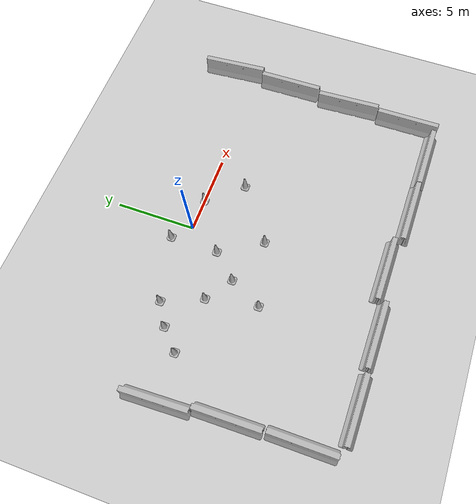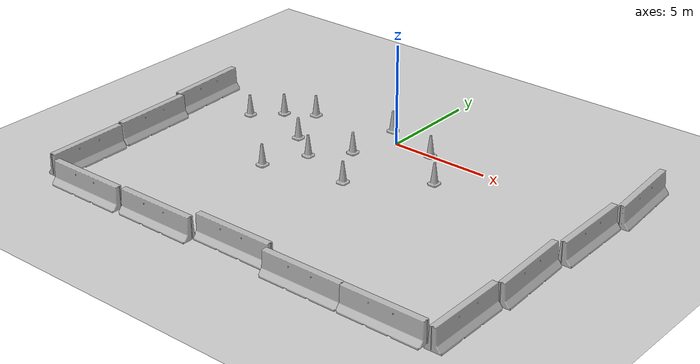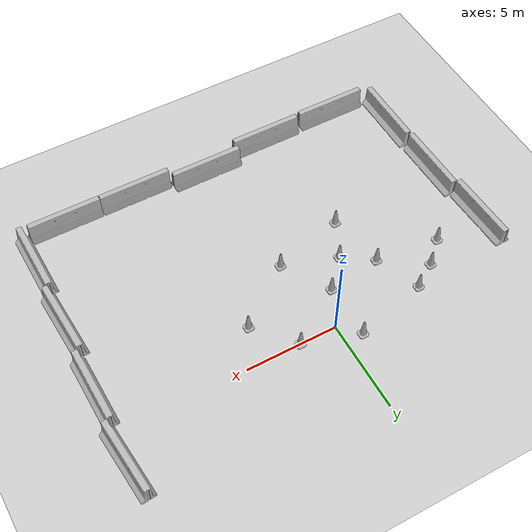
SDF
<sdf version="1.4">
 <world name="default">
  <model name="ground_plane">
   <static>1</static>
   <link name="link">
    <collision name="collision">
     <geometry><plane><normal>0 0 1</normal><size>100 100</size></plane></geometry>
     <surface><friction><ode><mu>100</mu><mu2>50</mu2></ode></friction></surface>
    </collision>
    <visual name="visual">
     <cast_shadows>0</cast_shadows>
     <geometry><plane><normal>0 0 1</normal><size>100 100</size></plane></geometry>
     <material>
      <script><uri>file://media/materials/scripts/gazebo.material</uri><name>Gazebo/Grey</name></script>
     </material>
    </visual>
    <velocity_decay><linear>0</linear><angular>0</angular></velocity_decay>
   </link>
  </model>
  <model name="jersey_barrier">
   <static>1</static>
   <link name="link">
    <visual name="visual">
     <geometry><mesh><uri>model://jersey_barrier/meshes/jersey_barrier.dae</uri></mesh></geometry>
    </visual>
    <collision name="upright">
     <pose>0 0 0.5715 0 -0 0</pose>
     <geometry><box><size>4.06542 0.3063 1.143</size></box></geometry>
    </collision>
    <collision name="base">
     <pose>0 0 0.032258 0 -0 0</pose>
     <geometry><box><size>4.06542 0.8107 0.064516</size></box></geometry>
    </collision>
    <collision name="base2">
     <pose>0 0 0.1 0 -0 0</pose>
     <geometry><box><size>4.06542 0.65 0.1</size></box></geometry>
    </collision>
    <collision name="base3">
     <pose>0 0 0.2 0 -0 0</pose>
     <geometry><box><size>4.06542 0.5 0.1</size></box></geometry>
    </collision>
    <collision name="left-angle">
     <pose>0 -0.224 0.2401 0.9 -0 0</pose>
     <geometry><box><size>4.06542 0.5 0.064516</size></box></geometry>
    </collision>
    <collision name="right-angle">
     <pose>0 0.224 0.2401 -0.9 0 0</pose>
     <geometry><box><size>4.06542 0.5 0.064516</size></box></geometry>
    </collision>
    <velocity_decay><linear>0</linear><angular>0</angular></velocity_decay>
   </link>
   <pose>-7.26215 -12.5985 0 0 -0 0</pose>
  </model>
  <model name="jersey_barrier_0">
   <static>1</static>
   <link name="link">
    <visual name="visual">
     <geometry><mesh><uri>model://jersey_barrier/meshes/jersey_barrier.dae</uri></mesh></geometry>
    </visual>
    <collision name="upright">
     <pose>0 0 0.5715 0 -0 0</pose>
     <geometry><box><size>4.06542 0.3063 1.143</size></box></geometry>
    </collision>
    <collision name="base">
     <pose>0 0 0.032258 0 -0 0</pose>
     <geometry><box><size>4.06542 0.8107 0.064516</size></box></geometry>
    </collision>
    <collision name="base2">
     <pose>0 0 0.1 0 -0 0</pose>
     <geometry><box><size>4.06542 0.65 0.1</size></box></geometry>
    </collision>
    <collision name="base3">
     <pose>0 0 0.2 0 -0 0</pose>
     <geometry><box><size>4.06542 0.5 0.1</size></box></geometry>
    </collision>
    <collision name="left-angle">
     <pose>0 -0.224 0.2401 0.9 -0 0</pose>
     <geometry><box><size>4.06542 0.5 0.064516</size></box></geometry>
    </collision>
    <collision name="right-angle">
     <pose>0 0.224 0.2401 -0.9 0 0</pose>
     <geometry><box><size>4.06542 0.5 0.064516</size></box></geometry>
    </collision>
    <velocity_decay><linear>0</linear><angular>0</angular></velocity_decay>
   </link>
   <pose>-3 -12.5184 0 0 -0 0</pose>
  </model>
  <model name="jersey_barrier_1">
   <static>1</static>
   <link name="link">
    <visual name="visual">
     <geometry><mesh><uri>model://jersey_barrier/meshes/jersey_barrier.dae</uri></mesh></geometry>
    </visual>
    <collision name="upright">
     <pose>0 0 0.5715 0 -0 0</pose>
     <geometry><box><size>4.06542 0.3063 1.143</size></box></geometry>
    </collision>
    <collision name="base">
     <pose>0 0 0.032258 0 -0 0</pose>
     <geometry><box><size>4.06542 0.8107 0.064516</size></box></geometry>
    </collision>
    <collision name="base2">
     <pose>0 0 0.1 0 -0 0</pose>
     <geometry><box><size>4.06542 0.65 0.1</size></box></geometry>
    </collision>
    <collision name="base3">
     <pose>0 0 0.2 0 -0 0</pose>
     <geometry><box><size>4.06542 0.5 0.1</size></box></geometry>
    </collision>
    <collision name="left-angle">
     <pose>0 -0.224 0.2401 0.9 -0 0</pose>
     <geometry><box><size>4.06542 0.5 0.064516</size></box></geometry>
    </collision>
    <collision name="right-angle">
     <pose>0 0.224 0.2401 -0.9 0 0</pose>
     <geometry><box><size>4.06542 0.5 0.064516</size></box></geometry>
    </collision>
    <velocity_decay><linear>0</linear><angular>0</angular></velocity_decay>
   </link>
   <pose>1 -12 0 0 -0 0</pose>
  </model>
  <model name="jersey_barrier_2">
   <static>1</static>
   <link name="link">
    <visual name="visual">
     <geometry><mesh><uri>model://jersey_barrier/meshes/jersey_barrier.dae</uri></mesh></geometry>
    </visual>
    <collision name="upright">
     <pose>0 0 0.5715 0 -0 0</pose>
     <geometry><box><size>4.06542 0.3063 1.143</size></box></geometry>
    </collision>
    <collision name="base">
     <pose>0 0 0.032258 0 -0 0</pose>
     <geometry><box><size>4.06542 0.8107 0.064516</size></box></geometry>
    </collision>
    <collision name="base2">
     <pose>0 0 0.1 0 -0 0</pose>
     <geometry><box><size>4.06542 0.65 0.1</size></box></geometry>
    </collision>
    <collision name="base3">
     <pose>0 0 0.2 0 -0 0</pose>
     <geometry><box><size>4.06542 0.5 0.1</size></box></geometry>
    </collision>
    <collision name="left-angle">
     <pose>0 -0.224 0.2401 0.9 -0 0</pose>
     <geometry><box><size>4.06542 0.5 0.064516</size></box></geometry>
    </collision>
    <collision name="right-angle">
     <pose>0 0.224 0.2401 -0.9 0 0</pose>
     <geometry><box><size>4.06542 0.5 0.064516</size></box></geometry>
    </collision>
    <velocity_decay><linear>0</linear><angular>0</angular></velocity_decay>
   </link>
   <pose>5.13642 -12.451 0 0 -0 0</pose>
  </model>
  <model name="jersey_barrier_3">
   <static>1</static>
   <link name="link">
    <visual name="visual">
     <geometry><mesh><uri>model://jersey_barrier/meshes/jersey_barrier.dae</uri></mesh></geometry>
    </visual>
    <collision name="upright">
     <pose>0 0 0.5715 0 -0 0</pose>
     <geometry><box><size>4.06542 0.3063 1.143</size></box></geometry>
    </collision>
    <collision name="base">
     <pose>0 0 0.032258 0 -0 0</pose>
     <geometry><box><size>4.06542 0.8107 0.064516</size></box></geometry>
    </collision>
    <collision name="base2">
     <pose>0 0 0.1 0 -0 0</pose>
     <geometry><box><size>4.06542 0.65 0.1</size></box></geometry>
    </collision>
    <collision name="base3">
     <pose>0 0 0.2 0 -0 0</pose>
     <geometry><box><size>4.06542 0.5 0.1</size></box></geometry>
    </collision>
    <collision name="left-angle">
     <pose>0 -0.224 0.2401 0.9 -0 0</pose>
     <geometry><box><size>4.06542 0.5 0.064516</size></box></geometry>
    </collision>
    <collision name="right-angle">
     <pose>0 0.224 0.2401 -0.9 0 0</pose>
     <geometry><box><size>4.06542 0.5 0.064516</size></box></geometry>
    </collision>
    <velocity_decay><linear>0</linear><angular>0</angular></velocity_decay>
   </link>
   <pose>9.19104 -12.4604 0 0 -0 0</pose>
  </model>
  <model name="jersey_barrier_4">
   <static>1</static>
   <link name="link">
    <visual name="visual">
     <geometry><mesh><uri>model://jersey_barrier/meshes/jersey_barrier.dae</uri></mesh></geometry>
    </visual>
    <collision name="upright">
     <pose>0 0 0.5715 0 -0 0</pose>
     <geometry><box><size>4.06542 0.3063 1.143</size></box></geometry>
    </collision>
    <collision name="base">
     <pose>0 0 0.032258 0 -0 0</pose>
     <geometry><box><size>4.06542 0.8107 0.064516</size></box></geometry>
    </collision>
    <collision name="base2">
     <pose>0 0 0.1 0 -0 0</pose>
     <geometry><box><size>4.06542 0.65 0.1</size></box></geometry>
    </collision>
    <collision name="base3">
     <pose>0 0 0.2 0 -0 0</pose>
     <geometry><box><size>4.06542 0.5 0.1</size></box></geometry>
    </collision>
    <collision name="left-angle">
     <pose>0 -0.224 0.2401 0.9 -0 0</pose>
     <geometry><box><size>4.06542 0.5 0.064516</size></box></geometry>
    </collision>
    <collision name="right-angle">
     <pose>0 0.224 0.2401 -0.9 0 0</pose>
     <geometry><box><size>4.06542 0.5 0.064516</size></box></geometry>
    </collision>
    <velocity_decay><linear>0</linear><angular>0</angular></velocity_decay>
   </link>
   <pose>11.6163 -10.6377 0 0 -0 1.58161</pose>
  </model>
  <model name="jersey_barrier_12">
   <static>1</static>
   <link name="link">
    <visual name="visual">
     <geometry><mesh><uri>model://jersey_barrier/meshes/jersey_barrier.dae</uri></mesh></geometry>
    </visual>
    <collision name="upright">
     <pose>0 0 0.5715 0 -0 0</pose>
     <geometry><box><size>4.06542 0.3063 1.143</size></box></geometry>
    </collision>
    <collision name="base">
     <pose>0 0 0.032258 0 -0 0</pose>
     <geometry><box><size>4.06542 0.8107 0.064516</size></box></geometry>
    </collision>
    <collision name="base2">
     <pose>0 0 0.1 0 -0 0</pose>
     <geometry><box><size>4.06542 0.65 0.1</size></box></geometry>
    </collision>
    <collision name="base3">
     <pose>0 0 0.2 0 -0 0</pose>
     <geometry><box><size>4.06542 0.5 0.1</size></box></geometry>
    </collision>
    <collision name="left-angle">
     <pose>0 -0.224 0.2401 0.9 -0 0</pose>
     <geometry><box><size>4.06542 0.5 0.064516</size></box></geometry>
    </collision>
    <collision name="right-angle">
     <pose>0 0.224 0.2401 -0.9 0 0</pose>
     <geometry><box><size>4.06542 0.5 0.064516</size></box></geometry>
    </collision>
    <velocity_decay><linear>0</linear><angular>0</angular></velocity_decay>
   </link>
   <pose>12.0907 1.67887 0 0 -0 1.64825</pose>
  </model>
  <model name="jersey_barrier_13">
   <static>1</static>
   <link name="link">
    <visual name="visual">
     <geometry><mesh><uri>model://jersey_barrier/meshes/jersey_barrier.dae</uri></mesh></geometry>
    </visual>
    <collision name="upright">
     <pose>0 0 0.5715 0 -0 0</pose>
     <geometry><box><size>4.06542 0.3063 1.143</size></box></geometry>
    </collision>
    <collision name="base">
     <pose>0 0 0.032258 0 -0 0</pose>
     <geometry><box><size>4.06542 0.8107 0.064516</size></box></geometry>
    </collision>
    <collision name="base2">
     <pose>0 0 0.1 0 -0 0</pose>
     <geometry><box><size>4.06542 0.65 0.1</size></box></geometry>
    </collision>
    <collision name="base3">
     <pose>0 0 0.2 0 -0 0</pose>
     <geometry><box><size>4.06542 0.5 0.1</size></box></geometry>
    </collision>
    <collision name="left-angle">
     <pose>0 -0.224 0.2401 0.9 -0 0</pose>
     <geometry><box><size>4.06542 0.5 0.064516</size></box></geometry>
    </collision>
    <collision name="right-angle">
     <pose>0 0.224 0.2401 -0.9 0 0</pose>
     <geometry><box><size>4.06542 0.5 0.064516</size></box></geometry>
    </collision>
    <velocity_decay><linear>0</linear><angular>0</angular></velocity_decay>
   </link>
   <pose>11.9521 -2.38624 0 0 -0 1.58545</pose>
  </model>
  <model name="jersey_barrier_14">
   <static>1</static>
   <link name="link">
    <visual name="visual">
     <geometry><mesh><uri>model://jersey_barrier/meshes/jersey_barrier.dae</uri></mesh></geometry>
    </visual>
    <collision name="upright">
     <pose>0 0 0.5715 0 -0 0</pose>
     <geometry><box><size>4.06542 0.3063 1.143</size></box></geometry>
    </collision>
    <collision name="base">
     <pose>0 0 0.032258 0 -0 0</pose>
     <geometry><box><size>4.06542 0.8107 0.064516</size></box></geometry>
    </collision>
    <collision name="base2">
     <pose>0 0 0.1 0 -0 0</pose>
     <geometry><box><size>4.06542 0.65 0.1</size></box></geometry>
    </collision>
    <collision name="base3">
     <pose>0 0 0.2 0 -0 0</pose>
     <geometry><box><size>4.06542 0.5 0.1</size></box></geometry>
    </collision>
    <collision name="left-angle">
     <pose>0 -0.224 0.2401 0.9 -0 0</pose>
     <geometry><box><size>4.06542 0.5 0.064516</size></box></geometry>
    </collision>
    <collision name="right-angle">
     <pose>0 0.224 0.2401 -0.9 0 0</pose>
     <geometry><box><size>4.06542 0.5 0.064516</size></box></geometry>
    </collision>
    <velocity_decay><linear>0</linear><angular>0</angular></velocity_decay>
   </link>
   <pose>11.7484 -6.5369 0 0 -0 1.61742</pose>
  </model>
  <model name="jersey_barrier_17">
   <static>1</static>
   <link name="link">
    <visual name="visual">
     <geometry><mesh><uri>model://jersey_barrier/meshes/jersey_barrier.dae</uri></mesh></geometry>
    </visual>
    <collision name="upright">
     <pose>0 0 0.5715 0 -0 0</pose>
     <geometry><box><size>4.06542 0.3063 1.143</size></box></geometry>
    </collision>
    <collision name="base">
     <pose>0 0 0.032258 0 -0 0</pose>
     <geometry><box><size>4.06542 0.8107 0.064516</size></box></geometry>
    </collision>
    <collision name="base2">
     <pose>0 0 0.1 0 -0 0</pose>
     <geometry><box><size>4.06542 0.65 0.1</size></box></geometry>
    </collision>
    <collision name="base3">
     <pose>0 0 0.2 0 -0 0</pose>
     <geometry><box><size>4.06542 0.5 0.1</size></box></geometry>
    </collision>
    <collision name="left-angle">
     <pose>0 -0.224 0.2401 0.9 -0 0</pose>
     <geometry><box><size>4.06542 0.5 0.064516</size></box></geometry>
    </collision>
    <collision name="right-angle">
     <pose>0 0.224 0.2401 -0.9 0 0</pose>
     <geometry><box><size>4.06542 0.5 0.064516</size></box></geometry>
    </collision>
    <velocity_decay><linear>0</linear><angular>0</angular></velocity_decay>
   </link>
   <pose>-10.3644 -2.14271 0 0 -0 1.60702</pose>
  </model>
  <model name="jersey_barrier_18">
   <static>1</static>
   <link name="link">
    <visual name="visual">
     <geometry><mesh><uri>model://jersey_barrier/meshes/jersey_barrier.dae</uri></mesh></geometry>
    </visual>
    <collision name="upright">
     <pose>0 0 0.5715 0 -0 0</pose>
     <geometry><box><size>4.06542 0.3063 1.143</size></box></geometry>
    </collision>
    <collision name="base">
     <pose>0 0 0.032258 0 -0 0</pose>
     <geometry><box><size>4.06542 0.8107 0.064516</size></box></geometry>
    </collision>
    <collision name="base2">
     <pose>0 0 0.1 0 -0 0</pose>
     <geometry><box><size>4.06542 0.65 0.1</size></box></geometry>
    </collision>
    <collision name="base3">
     <pose>0 0 0.2 0 -0 0</pose>
     <geometry><box><size>4.06542 0.5 0.1</size></box></geometry>
    </collision>
    <collision name="left-angle">
     <pose>0 -0.224 0.2401 0.9 -0 0</pose>
     <geometry><box><size>4.06542 0.5 0.064516</size></box></geometry>
    </collision>
    <collision name="right-angle">
     <pose>0 0.224 0.2401 -0.9 0 0</pose>
     <geometry><box><size>4.06542 0.5 0.064516</size></box></geometry>
    </collision>
    <velocity_decay><linear>0</linear><angular>0</angular></velocity_decay>
   </link>
   <pose>-9.98265 -6.18571 0 0 -0 1.58701</pose>
  </model>
  <model name="jersey_barrier_19">
   <static>1</static>
   <link name="link">
    <visual name="visual">
     <geometry><mesh><uri>model://jersey_barrier/meshes/jersey_barrier.dae</uri></mesh></geometry>
    </visual>
    <collision name="upright">
     <pose>0 0 0.5715 0 -0 0</pose>
     <geometry><box><size>4.06542 0.3063 1.143</size></box></geometry>
    </collision>
    <collision name="base">
     <pose>0 0 0.032258 0 -0 0</pose>
     <geometry><box><size>4.06542 0.8107 0.064516</size></box></geometry>
    </collision>
    <collision name="base2">
     <pose>0 0 0.1 0 -0 0</pose>
     <geometry><box><size>4.06542 0.65 0.1</size></box></geometry>
    </collision>
    <collision name="base3">
     <pose>0 0 0.2 0 -0 0</pose>
     <geometry><box><size>4.06542 0.5 0.1</size></box></geometry>
    </collision>
    <collision name="left-angle">
     <pose>0 -0.224 0.2401 0.9 -0 0</pose>
     <geometry><box><size>4.06542 0.5 0.064516</size></box></geometry>
    </collision>
    <collision name="right-angle">
     <pose>0 0.224 0.2401 -0.9 0 0</pose>
     <geometry><box><size>4.06542 0.5 0.064516</size></box></geometry>
    </collision>
    <velocity_decay><linear>0</linear><angular>0</angular></velocity_decay>
   </link>
   <pose>-9.85449 -10.3717 0 0 -0 1.57336</pose>
  </model>
  <model name="Construction Cone">
   <link name="link">
    <collision name="collision">
     <geometry>
      <mesh><scale>10 10 10</scale><uri>model://construction_cone/meshes/construction_cone.dae</uri></mesh>
     </geometry>
    </collision>
    <visual name="visual">
     <geometry>
      <mesh><scale>10 10 10</scale><uri>model://construction_cone/meshes/construction_cone.dae</uri></mesh>
     </geometry>
    </visual>
    <velocity_decay><linear>0</linear><angular>0</angular></velocity_decay>
    <inertial>
     <inertia><ixx>1</ixx><ixy>0</ixy><ixz>0</ixz><iyy>1</iyy><iyz>0</iyz><izz>1</izz></inertia>
     <mass>1</mass>
    </inertial>
   </link>
   <pose>-1 -2 1e-06 2e-06 3e-06 0</pose>
   <static>0</static>
  </model>
  <model name="Construction Cone_0">
   <link name="link">
    <collision name="collision">
     <geometry>
      <mesh><scale>10 10 10</scale><uri>model://construction_cone/meshes/construction_cone.dae</uri></mesh>
     </geometry>
    </collision>
    <visual name="visual">
     <geometry>
      <mesh><scale>10 10 10</scale><uri>model://construction_cone/meshes/construction_cone.dae</uri></mesh>
     </geometry>
    </visual>
    <velocity_decay><linear>0</linear><angular>0</angular></velocity_decay>
    <inertial>
     <inertia><ixx>1</ixx><ixy>0</ixy><ixz>0</ixz><iyy>1</iyy><iyz>0</iyz><izz>1</izz></inertia>
     <mass>1</mass>
    </inertial>
   </link>
   <pose>2 -0 -9e-06 -0 -0 -0</pose>
   <static>0</static>
  </model>
  <model name="Construction Cone_1">
   <link name="link">
    <collision name="collision">
     <geometry>
      <mesh><scale>10 10 10</scale><uri>model://construction_cone/meshes/construction_cone.dae</uri></mesh>
     </geometry>
    </collision>
    <visual name="visual">
     <geometry>
      <mesh><scale>10 10 10</scale><uri>model://construction_cone/meshes/construction_cone.dae</uri></mesh>
     </geometry>
    </visual>
    <velocity_decay><linear>0</linear><angular>0</angular></velocity_decay>
    <inertial>
     <inertia><ixx>1</ixx><ixy>0</ixy><ixz>0</ixz><iyy>1</iyy><iyz>0</iyz><izz>1</izz></inertia>
     <mass>1</mass>
    </inertial>
   </link>
   <pose>0.541669 -4.54954 1e-06 1e-06 3e-06 -4.03897e-28</pose>
   <static>0</static>
  </model>
  <model name="Construction Cone_2">
   <link name="link">
    <collision name="collision">
     <geometry>
      <mesh><scale>10 10 10</scale><uri>model://construction_cone/meshes/construction_cone.dae</uri></mesh>
     </geometry>
    </collision>
    <visual name="visual">
     <geometry>
      <mesh><scale>10 10 10</scale><uri>model://construction_cone/meshes/construction_cone.dae</uri></mesh>
     </geometry>
    </visual>
    <velocity_decay><linear>0</linear><angular>0</angular></velocity_decay>
    <inertial>
     <inertia><ixx>1</ixx><ixy>0</ixy><ixz>0</ixz><iyy>1</iyy><iyz>0</iyz><izz>1</izz></inertia>
     <mass>1</mass>
    </inertial>
   </link>
   <pose>-3.40771 -5.57895 0 1e-06 1e-06 0</pose>
   <static>0</static>
  </model>
  <model name="Construction Cone_3">
   <link name="link">
    <collision name="collision">
     <geometry>
      <mesh><scale>10 10 10</scale><uri>model://construction_cone/meshes/construction_cone.dae</uri></mesh>
     </geometry>
    </collision>
    <visual name="visual">
     <geometry>
      <mesh><scale>10 10 10</scale><uri>model://construction_cone/meshes/construction_cone.dae</uri></mesh>
     </geometry>
    </visual>
    <velocity_decay><linear>0</linear><angular>0</angular></velocity_decay>
    <inertial>
     <inertia><ixx>1</ixx><ixy>0</ixy><ixz>0</ixz><iyy>1</iyy><iyz>0</iyz><izz>1</izz></inertia>
     <mass>1</mass>
    </inertial>
   </link>
   <pose>3.78316 -2.07574 -9e-06 0 1e-06 0</pose>
   <static>0</static>
  </model>
  <model name="Construction Cone_5">
   <link name="link">
    <collision name="collision">
     <geometry>
      <mesh><scale>10 10 10</scale><uri>model://construction_cone/meshes/construction_cone.dae</uri></mesh>
     </geometry>
    </collision>
    <visual name="visual">
     <geometry>
      <mesh><scale>10 10 10</scale><uri>model://construction_cone/meshes/construction_cone.dae</uri></mesh>
     </geometry>
    </visual>
    <velocity_decay><linear>0</linear><angular>0</angular></velocity_decay>
    <inertial>
     <inertia><ixx>1</ixx><ixy>0</ixy><ixz>0</ixz><iyy>1</iyy><iyz>0</iyz><izz>1</izz></inertia>
     <mass>1</mass>
    </inertial>
   </link>
   <pose>-5 -0 -7e-06 -0 -0 -0</pose>
   <static>0</static>
  </model>
  <model name="Construction Cone_6">
   <link name="link">
    <collision name="collision">
     <geometry>
      <mesh><scale>10 10 10</scale><uri>model://construction_cone/meshes/construction_cone.dae</uri></mesh>
     </geometry>
    </collision>
    <visual name="visual">
     <geometry>
      <mesh><scale>10 10 10</scale><uri>model://construction_cone/meshes/construction_cone.dae</uri></mesh>
     </geometry>
    </visual>
    <velocity_decay><linear>0</linear><angular>0</angular></velocity_decay>
    <inertial>
     <inertia><ixx>1</ixx><ixy>0</ixy><ixz>0</ixz><iyy>1</iyy><iyz>0</iyz><izz>1</izz></inertia>
     <mass>1</mass>
    </inertial>
   </link>
   <pose>-7.52705 -2 -0 0 -1e-06 0</pose>
   <static>0</static>
  </model>
  <model name="Construction Cone_9">
   <link name="link">
    <collision name="collision">
     <geometry>
      <mesh><scale>10 10 10</scale><uri>model://construction_cone/meshes/construction_cone.dae</uri></mesh>
     </geometry>
    </collision>
    <visual name="visual">
     <geometry>
      <mesh><scale>10 10 10</scale><uri>model://construction_cone/meshes/construction_cone.dae</uri></mesh>
     </geometry>
    </visual>
    <velocity_decay><linear>0</linear><angular>0</angular></velocity_decay>
    <inertial>
     <inertia><ixx>1</ixx><ixy>0</ixy><ixz>0</ixz><iyy>1</iyy><iyz>0</iyz><izz>1</izz></inertia>
     <mass>1</mass>
    </inertial>
   </link>
   <pose>-6.32793 -0.848913 -0 -2e-06 -0 -0</pose>
   <static>0</static>
  </model>
  <model name="Construction Cone_11">
   <link name="link">
    <collision name="collision">
     <geometry>
      <mesh><scale>10 10 10</scale><uri>model://construction_cone/meshes/construction_cone.dae</uri></mesh>
     </geometry>
    </collision>
    <visual name="visual">
     <geometry>
      <mesh><scale>10 10 10</scale><uri>model://construction_cone/meshes/construction_cone.dae</uri></mesh>
     </geometry>
    </visual>
    <velocity_decay><linear>0</linear><angular>0</angular></velocity_decay>
    <inertial>
     <inertia><ixx>1</ixx><ixy>0</ixy><ixz>0</ixz><iyy>1</iyy><iyz>0</iyz><izz>1</izz></inertia>
     <mass>1</mass>
    </inertial>
   </link>
   <pose>-1 1 -1e-05 0 -1e-06 0</pose>
   <static>0</static>
  </model>
  <model name="Construction Cone_12">
   <link name="link">
    <collision name="collision">
     <geometry>
      <mesh><scale>10 10 10</scale><uri>model://construction_cone/meshes/construction_cone.dae</uri></mesh>
     </geometry>
    </collision>
    <visual name="visual">
     <geometry>
      <mesh><scale>10 10 10</scale><uri>model://construction_cone/meshes/construction_cone.dae</uri></mesh>
     </geometry>
    </visual>
    <velocity_decay><linear>0</linear><angular>0</angular></velocity_decay>
    <inertial>
     <inertia><ixx>1</ixx><ixy>0</ixy><ixz>0</ixz><iyy>1</iyy><iyz>0</iyz><izz>1</izz></inertia>
     <mass>1</mass>
    </inertial>
   </link>
   <pose>-4 -2.43153 -9e-06 0 1e-06 0</pose>
   <static>0</static>
  </model>
  <model name="Construction Cone_14">
   <link name="link">
    <collision name="collision">
     <geometry>
      <mesh><scale>10 10 10</scale><uri>model://construction_cone/meshes/construction_cone.dae</uri></mesh>
     </geometry>
    </collision>
    <visual name="visual">
     <geometry>
      <mesh><scale>10 10 10</scale><uri>model://construction_cone/meshes/construction_cone.dae</uri></mesh>
     </geometry>
    </visual>
    <velocity_decay><linear>0</linear><angular>0</angular></velocity_decay>
    <inertial>
     <inertia><ixx>1</ixx><ixy>0</ixy><ixz>0</ixz><iyy>1</iyy><iyz>0</iyz><izz>1</izz></inertia>
     <mass>1</mass>
    </inertial>
   </link>
   <pose>-2.40364 -3.54055 -9e-06 0 -0 0</pose>
   <static>0</static>
  </model>
 </world>
</sdf>
